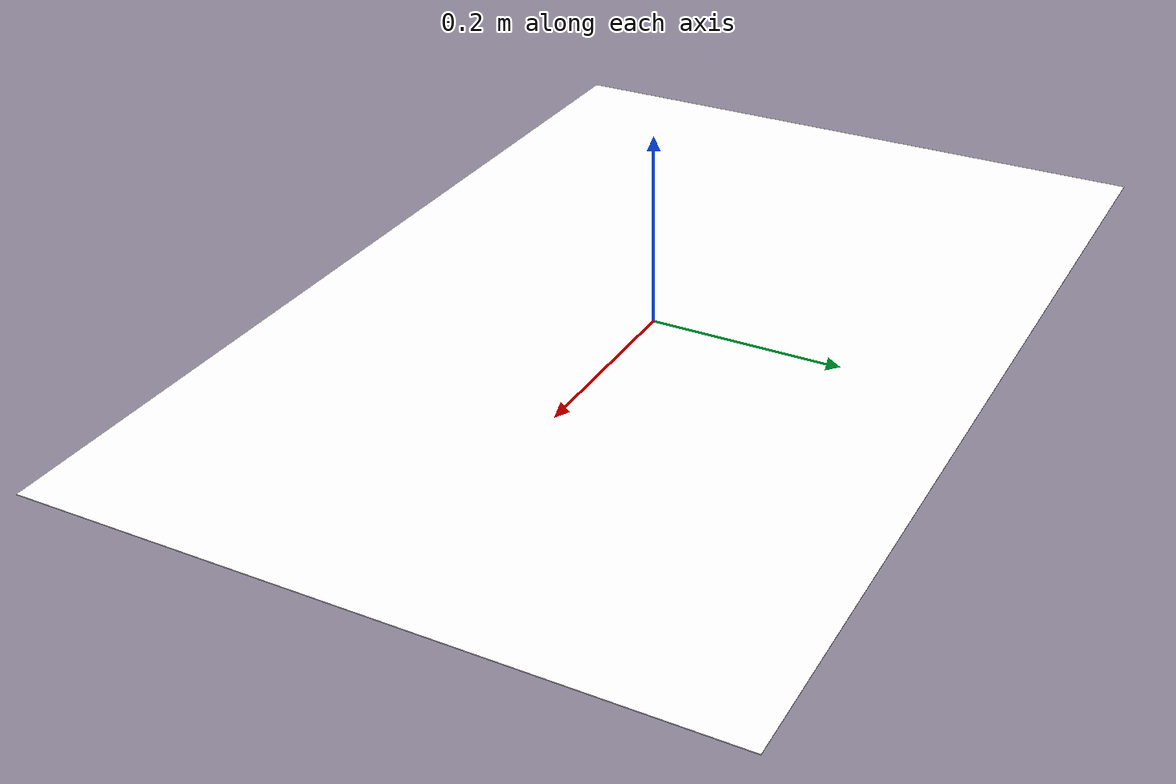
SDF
<?xml version="1.0" ?>
<sdf version="1.9">
  <model name="target_basket">
    <static>true</static>
    <link name="basket_link">
      <pose>0 0 0 0 0 0</pose>

      <collision name="basket_collision">
        <pose>0 0 0.035 0 0 0</pose>
        <geometry>
          <box>
            <size>0.238 0.138 0.070</size>
          </box>
        </geometry>
      </collision>

      <visual name="basket_detector_visual">
        <pose>0 0 0.004 0 0 0</pose>
        <cast_shadows>false</cast_shadows>
        <geometry>
          <plane>
            <normal>0 0 1</normal>
            <size>1.033 0.690</size>
          </plane>
        </geometry>
        <material>
          <ambient>1 1 1 1</ambient>
          <diffuse>1 1 1 1</diffuse>
          <specular>0 0 0 1</specular>
          <pbr>
            <metal>
              <albedo_map>materials/textures/white_basket_reference_crop.png</albedo_map>
              <roughness>1.0</roughness>
              <metalness>0</metalness>
            </metal>
          </pbr>
        </material>
      </visual>
    </link>
  </model>
</sdf>
